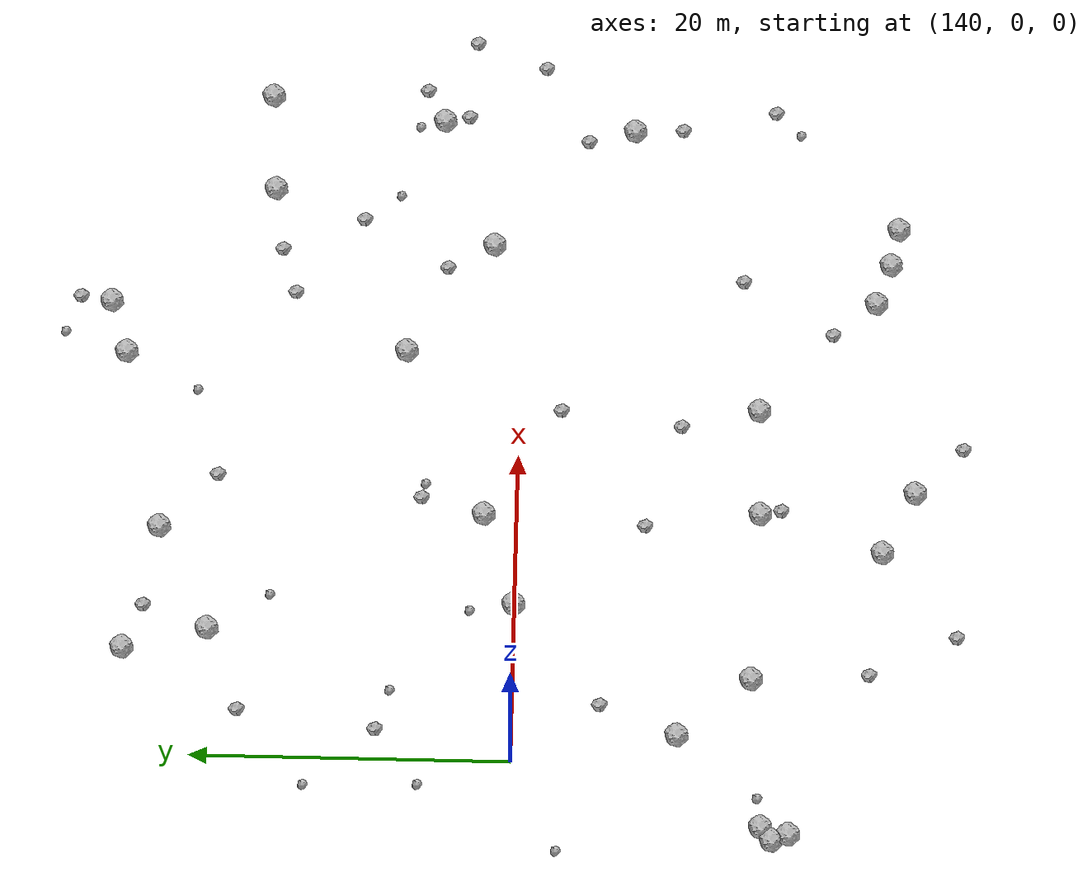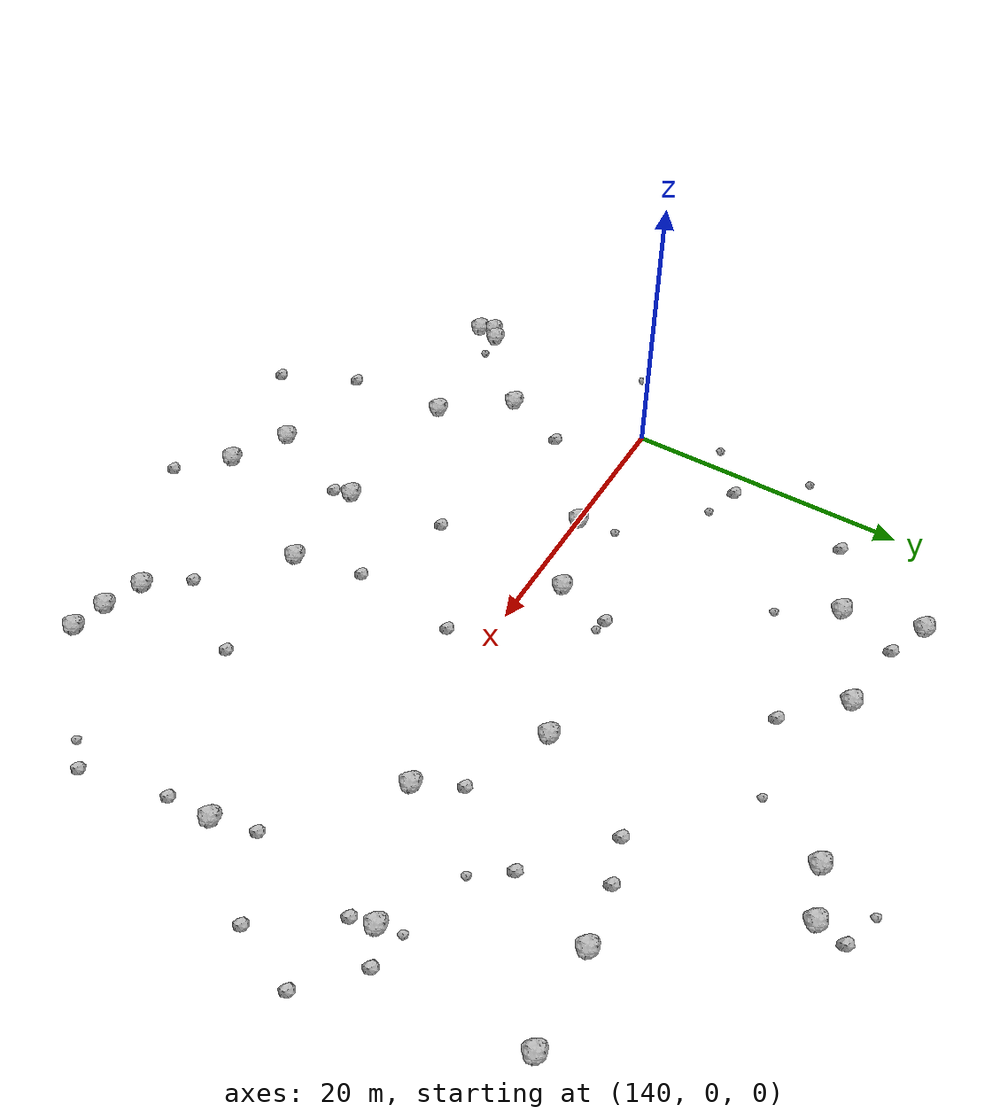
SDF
<sdf version="1.6">
 <world name="default">
  <include><uri>model://sun</uri></include>
  <model name="rock1_4_2">
   <include><uri>model://rock1</uri><pose>150.1452363954523 0.08606758750860166 0.5 0 0 0</pose></include>
  </model>
  <model name="rock1_4_3">
   <include><uri>model://rock1</uri><pose>182.50356759144512 5.212011529307482 0.5 0 0 0</pose></include>
  </model>
  <model name="rock1_4_4">
   <include><uri>model://rock1</uri><pose>177.59990969248236 15.939013511709675 0.5 0 0 0</pose></include>
  </model>
  <model name="rock1_4_5">
   <include><uri>model://rock1</uri><pose>163.2231880622773 -15.16745310640296 0.5 0 0 0</pose></include>
  </model>
  <model name="rock1_4_6">
   <include><uri>model://rock1</uri><pose>169.7193038669402 26.103581356958017 0.5 0 0 0</pose></include>
  </model>
  <model name="rock1_4_7">
   <include><uri>model://rock1</uri><pose>136.1601090120801 -15.431507194153555 0.5 0 0 0</pose></include>
  </model>
  <model name="rock1_4_8">
   <include><uri>model://rock1</uri><pose>156.01047178068046 2.0845016852659413 0.5 0 0 0</pose></include>
  </model>
  <model name="rock1_4_9">
   <include><uri>model://rock1</uri><pose>135.34469658548332 -16.108268266669576 0.5 0 0 0</pose></include>
  </model>
  <model name="rock1_4_10">
   <include><uri>model://rock1</uri><pose>148.16578324106484 19.16740393730472 0.5 0 0 0</pose></include>
  </model>
  <model name="rock1_4_11">
   <include><uri>model://rock1</uri><pose>166.32035281667515 25.005320060067646 0.5 0 0 0</pose></include>
  </model>
  <model name="rock1_4_12">
   <include><uri>model://rock1</uri><pose>157.96858463708605 -25.000895415629135 0.5 0 0 0</pose></include>
  </model>
  <model name="rock1_4_13">
   <include><uri>model://rock1</uri><pose>183.99758231739835 16.32469906221784 0.5 0 0 0</pose></include>
  </model>
  <model name="rock1_4_14">
   <include><uri>model://rock1</uri><pose>173.24493446469523 -23.47885506525137 0.5 0 0 0</pose></include>
  </model>
  <model name="rock1_4_15">
   <include><uri>model://rock1</uri><pose>146.80364692671444 24.422382973724552 0.5 0 0 0</pose></include>
  </model>
  <model name="rock1_4_16">
   <include><uri>model://rock1</uri><pose>154.00688026429242 -22.945398828557636 0.5 0 0 0</pose></include>
  </model>
  <model name="rock1_4_17">
   <include><uri>model://rock1</uri><pose>166.76789184653464 7.238393722386718 0.5 0 0 0</pose></include>
  </model>
  <model name="rock1_4_18">
   <include><uri>model://rock1</uri><pose>141.90777617858845 -10.20203168087803 0.5 0 0 0</pose></include>
  </model>
  <model name="rock1_4_19">
   <include><uri>model://rock1</uri><pose>182.05793821281148 -7.028966090558924 0.5 0 0 0</pose></include>
  </model>
  <model name="rock1_4_20">
   <include><uri>model://rock1</uri><pose>145.61451772895995 -14.792041568208985 0.5 0 0 0</pose></include>
  </model>
  <model name="rock1_4_21">
   <include><uri>model://rock1</uri><pose>156.38278690740438 -15.273461202840675 0.5 0 0 0</pose></include>
  </model>
  <model name="rock1_4_22">
   <include><uri>model://rock1</uri><pose>154.75373423146212 22.432097149757723 0.5 0 0 0</pose></include>
  </model>
  <model name="rock1_4_23">
   <include><uri>model://rock1</uri><pose>135.74639118429215 -17.16006120985939 0.5 0 0 0</pose></include>
  </model>
  <model name="rock1_4_24">
   <include><uri>model://rock1</uri><pose>170.6071530706569 -22.554146885039877 0.5 0 0 0</pose></include>
  </model>
  <model name="rock1_4_25">
   <include><uri>model://rock1</uri><pose>174.0502557647158 1.8380292634999797 0.5 0 0 0</pose></include>
  </model>
  <model name="rock1_4_26">
   <include><uri>model://rock1</uri><pose>175.66890431750693 -23.985138451920438 0.5 0 0 0</pose></include>
  </model>
  <model name="rock2_4_0">
   <include><uri>model://rock2</uri><pose>148.59194140219648 -27.62105060714467 0.3 0 0 0</pose></include>
  </model>
  <model name="rock2_4_1">
   <include><uri>model://rock2</uri><pose>187.985787823965 3.2367666968615865 0.3 0 0 0</pose></include>
  </model>
  <model name="rock2_4_2">
   <include><uri>model://rock2</uri><pose>157.04805719017898 6.018358379167417 0.3 0 0 0</pose></include>
  </model>
  <model name="rock2_4_3">
   <include><uri>model://rock2</uri><pose>170.60210197810727 14.403672381306464 0.3 0 0 0</pose></include>
  </model>
  <model name="rock2_4_4">
   <include><uri>model://rock2</uri><pose>163.0048112059648 -2.6680559629136233 0.3 0 0 0</pose></include>
  </model>
  <model name="rock2_4_5">
   <include><uri>model://rock2</uri><pose>170.0374079883253 28.085988930831135 0.3 0 0 0</pose></include>
  </model>
  <model name="rock2_4_6">
   <include><uri>model://rock2</uri><pose>182.20999614140283 -10.137826174201315 0.3 0 0 0</pose></include>
  </model>
  <model name="rock2_4_7">
   <include><uri>model://rock2</uri><pose>175.65155014298733 10.190525800344169 0.3 0 0 0</pose></include>
  </model>
  <model name="rock2_4_8">
   <include><uri>model://rock2</uri><pose>155.4636777911634 -8.071600987669747 0.3 0 0 0</pose></include>
  </model>
  <model name="rock2_4_9">
   <include><uri>model://rock2</uri><pose>173.5276058165982 15.345916505683313 0.3 0 0 0</pose></include>
  </model>
  <model name="rock2_4_10">
   <include><uri>model://rock2</uri><pose>172.4780684720697 4.767414442542197 0.3 0 0 0</pose></include>
  </model>
  <model name="rock2_4_11">
   <include><uri>model://rock2</uri><pose>149.61132010606934 23.243209553524693 0.3 0 0 0</pose></include>
  </model>
  <model name="rock2_4_12">
   <include><uri>model://rock2</uri><pose>184.61547880789365 6.37345337906433 0.3 0 0 0</pose></include>
  </model>
  <model name="rock2_4_13">
   <include><uri>model://rock2</uri><pose>171.91725569232725 -14.123717816572638 0.3 0 0 0</pose></include>
  </model>
  <model name="rock2_4_14">
   <include><uri>model://rock2</uri><pose>168.44911638664686 -19.831989687757826 0.3 0 0 0</pose></include>
  </model>
  <model name="rock2_4_15">
   <include><uri>model://rock2</uri><pose>160.95016422304585 -28.066812844467343 0.3 0 0 0</pose></include>
  </model>
  <model name="rock2_4_16">
   <include><uri>model://rock2</uri><pose>141.9011435004996 8.49984258162074 0.3 0 0 0</pose></include>
  </model>
  <model name="rock2_4_17">
   <include><uri>model://rock2</uri><pose>142.98480625359832 17.120553012310154 0.3 0 0 0</pose></include>
  </model>
  <model name="rock2_4_18">
   <include><uri>model://rock2</uri><pose>156.64651337706118 -16.611369915000328 0.3 0 0 0</pose></include>
  </model>
  <model name="rock2_4_19">
   <include><uri>model://rock2</uri><pose>143.76759432850605 -5.399848051148425 0.3 0 0 0</pose></include>
  </model>
  <model name="rock2_4_20">
   <include><uri>model://rock2</uri><pose>158.28918617938527 18.8868291492959 0.3 0 0 0</pose></include>
  </model>
  <model name="rock2_4_21">
   <include><uri>model://rock2</uri><pose>162.09754415489775 -10.273916020557621 0.3 0 0 0</pose></include>
  </model>
  <model name="rock2_4_22">
   <include><uri>model://rock2</uri><pose>181.29883810351555 -4.0765227257352095 0.3 0 0 0</pose></include>
  </model>
  <model name="rock2_4_23">
   <include><uri>model://rock2</uri><pose>146.04826274389427 -22.13726589213671 0.3 0 0 0</pose></include>
  </model>
  <model name="rock2_4_24">
   <include><uri>model://rock2</uri><pose>186.32769393112414 -1.2551567718522953 0.3 0 0 0</pose></include>
  </model>
  <model name="rock2_4_25">
   <include><uri>model://rock2</uri><pose>183.5506453749088 -16.1140073709326 0.3 0 0 0</pose></include>
  </model>
  <model name="rock2_4_26">
   <include><uri>model://rock2</uri><pose>182.83735310839612 3.6582686299613982 0.3 0 0 0</pose></include>
  </model>
  <model name="rock3_4_0">
   <include><uri>model://rock3</uri><pose>167.61664495412825 28.94610909187972 0.2 0 0 0</pose></include>
  </model>
  <model name="rock3_4_1">
   <include><uri>model://rock3</uri><pose>138.23752837796178 12.844075939072539 0.2 0 0 0</pose></include>
  </model>
  <model name="rock3_4_2">
   <include><uri>model://rock3</uri><pose>157.9292265783934 5.76926788479885 0.2 0 0 0</pose></include>
  </model>
  <model name="rock3_4_3">
   <include><uri>model://rock3</uri><pose>150.44130927207544 15.307823220512219 0.2 0 0 0</pose></include>
  </model>
  <model name="rock3_4_4">
   <include><uri>model://rock3</uri><pose>182.1013861404499 6.76501269388033 0.2 0 0 0</pose></include>
  </model>
  <model name="rock3_4_5">
   <include><uri>model://rock3</uri><pose>138.40209104280814 5.766989515837643 0.2 0 0 0</pose></include>
  </model>
  <model name="rock3_4_6">
   <include><uri>model://rock3</uri><pose>137.9783687760255 -15.259944963708401 0.2 0 0 0</pose></include>
  </model>
  <model name="rock3_4_7">
   <include><uri>model://rock3</uri><pose>163.88205003909852 20.37769276265567 0.2 0 0 0</pose></include>
  </model>
  <model name="rock3_4_8">
   <include><uri>model://rock3</uri><pose>149.67645491694094 2.798875223710567 0.2 0 0 0</pose></include>
  </model>
  <model name="rock3_4_9">
   <include><uri>model://rock3</uri><pose>134.36795147876893 -2.8753633543724817 0.2 0 0 0</pose></include>
  </model>
  <model name="rock3_4_10">
   <include><uri>model://rock3</uri><pose>182.03571538892163 -17.739209512110087 0.2 0 0 0</pose></include>
  </model>
  <model name="rock3_4_11">
   <include><uri>model://rock3</uri><pose>177.31034364730323 7.8754278261896715 0.2 0 0 0</pose></include>
  </model>
  <model name="rock3_4_12">
   <include><uri>model://rock3</uri><pose>144.4070865169174 7.64182775499026 0.2 0 0 0</pose></include>
  </model>
 </world>
</sdf>
